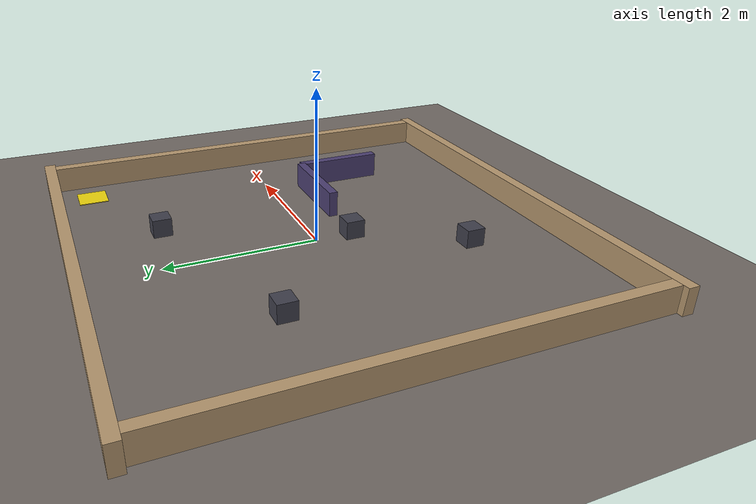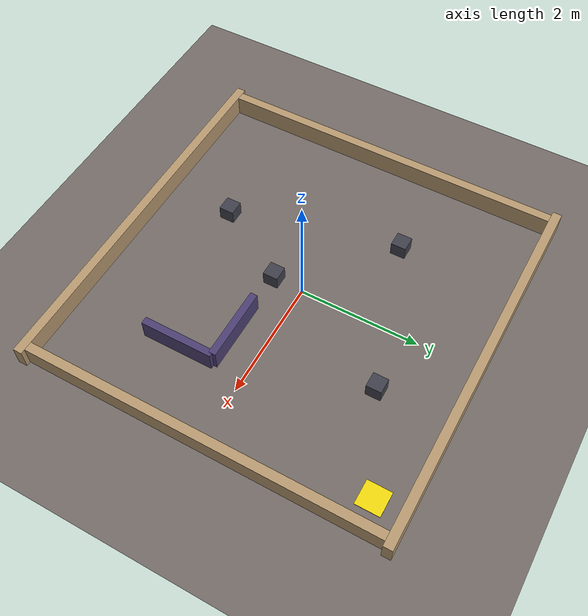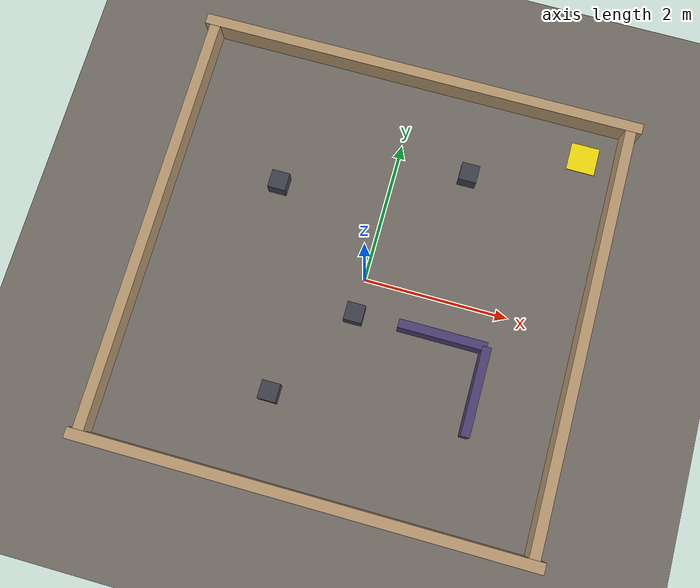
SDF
<?xml version="1.0" ?>
<sdf version="1.8">
  <world name="static_obstacles">
    <physics name="1ms" type="ignored">
      <max_step_size>0.001</max_step_size>
      <real_time_factor>1.0</real_time_factor>
    </physics>
    <plugin filename="gz-sim-physics-system"           name="gz::sim::systems::Physics"/>
    <plugin filename="gz-sim-sensors-system"           name="gz::sim::systems::Sensors">
      <render_engine>ogre2</render_engine>
    </plugin>
    <plugin filename="gz-sim-user-commands-system"     name="gz::sim::systems::UserCommands"/>
    <plugin filename="gz-sim-scene-broadcaster-system" name="gz::sim::systems::SceneBroadcaster"/>
    <plugin filename="gz-sim-contact-system"           name="gz::sim::systems::Contact"/>
    <plugin filename="gz-sim-imu-system"               name="gz::sim::systems::Imu"/>

    <light type="directional" name="overhead">
      <cast_shadows>false</cast_shadows>
      <pose>0 0 10 0 0 0</pose>
      <diffuse>1.0 1.0 1.0 1</diffuse>
      <specular>0.05 0.05 0.05 1</specular>
      <direction>0 0 -1</direction>
    </light>

    <model name="ground_plane">
      <static>true</static>
      <link name="link">
        <collision name="col"><geometry><plane><normal>0 0 1</normal><size>20 20</size></plane></geometry></collision>
        <visual name="vis">
          <geometry><plane><normal>0 0 1</normal><size>20 20</size></plane></geometry>
          <material><ambient>0.45 0.42 0.40 1</ambient><diffuse>0.45 0.42 0.40 1</diffuse></material>
        </visual>
      </link>
    </model>

    <!-- 6x6 room walls with correct names and heights -->
    <model name="wall_south">
      <static>true</static><pose>0 -3 0.175 0 0 0</pose>
      <link name="link">
        <collision name="c"><geometry><box><size>6.30 0.15 0.35</size></box></geometry></collision>
        <visual name="v"><geometry><box><size>6.30 0.15 0.35</size></box></geometry>
          <material><ambient>0.72 0.60 0.44 1</ambient><diffuse>0.72 0.60 0.44 1</diffuse></material>
        </visual>
      </link>
    </model>
    <model name="wall_north">
      <static>true</static><pose>0 3 0.175 0 0 0</pose>
      <link name="link">
        <collision name="c"><geometry><box><size>6.30 0.15 0.35</size></box></geometry></collision>
        <visual name="v"><geometry><box><size>6.30 0.15 0.35</size></box></geometry>
          <material><ambient>0.72 0.60 0.44 1</ambient><diffuse>0.72 0.60 0.44 1</diffuse></material>
        </visual>
      </link>
    </model>
    <model name="wall_west">
      <static>true</static><pose>-3 0 0.175 0 0 0</pose>
      <link name="link">
        <collision name="c"><geometry><box><size>0.15 5.85 0.35</size></box></geometry></collision>
        <visual name="v"><geometry><box><size>0.15 5.85 0.35</size></box></geometry>
          <material><ambient>0.72 0.60 0.44 1</ambient><diffuse>0.72 0.60 0.44 1</diffuse></material>
        </visual>
      </link>
    </model>
    <model name="wall_east">
      <static>true</static><pose>3 0 0.175 0 0 0</pose>
      <link name="link">
        <collision name="c"><geometry><box><size>0.15 5.85 0.35</size></box></geometry></collision>
        <visual name="v"><geometry><box><size>0.15 5.85 0.35</size></box></geometry>
          <material><ambient>0.72 0.60 0.44 1</ambient><diffuse>0.72 0.60 0.44 1</diffuse></material>
        </visual>
      </link>
    </model>

    <!-- STATIC PILLARS  (scattered to force path planning) -->
    <!-- Pillar helper macro: box 0.25×0.25×0.12, dark grey -->
    <model name="pillar_0">
      <static>true</static><pose>-1.5  1.0 0.06 0 0 0</pose>
      <link name="link">
        <collision name="c"><geometry><box><size>0.25 0.25 0.35</size></box></geometry></collision>
        <visual name="v"><geometry><box><size>0.25 0.25 0.35</size></box></geometry>
          <material><ambient>0.25 0.25 0.30 1</ambient><diffuse>0.25 0.25 0.30 1</diffuse></material>
        </visual>
      </link>
    </model>
    <model name="pillar_1">
      <static>true</static><pose> 1.0  1.8 0.06 0 0 0</pose>
      <link name="link">
        <collision name="c"><geometry><box><size>0.25 0.25 0.35</size></box></geometry></collision>
        <visual name="v"><geometry><box><size>0.25 0.25 0.35</size></box></geometry>
          <material><ambient>0.25 0.25 0.30 1</ambient><diffuse>0.25 0.25 0.30 1</diffuse></material>
        </visual>
      </link>
    </model>
    <model name="pillar_2">
      <static>true</static><pose> 0.0 -0.5 0.06 0 0 0</pose>
      <link name="link">
        <collision name="c"><geometry><box><size>0.25 0.25 0.35</size></box></geometry></collision>
        <visual name="v"><geometry><box><size>0.25 0.25 0.35</size></box></geometry>
          <material><ambient>0.25 0.25 0.30 1</ambient><diffuse>0.25 0.25 0.30 1</diffuse></material>
        </visual>
      </link>
    </model>
    <model name="pillar_3">
      <static>true</static><pose>-0.8 -1.8 0.06 0 0 0</pose>
      <link name="link">
        <collision name="c"><geometry><box><size>0.25 0.25 0.35</size></box></geometry></collision>
        <visual name="v"><geometry><box><size>0.25 0.25 0.35</size></box></geometry>
          <material><ambient>0.25 0.25 0.30 1</ambient><diffuse>0.25 0.25 0.30 1</diffuse></material>
        </visual>
      </link>
    </model>
    <!-- L-wall obstacle creating a corridor -->
    <model name="l_wall_h">
      <static>true</static><pose>1.2 -0.5 0.175 0 0 0</pose>
      <link name="link">
        <collision name="c"><geometry><box><size>1.20 0.12 0.35</size></box></geometry></collision>
        <visual name="v"><geometry><box><size>1.20 0.12 0.35</size></box></geometry>
          <material><ambient>0.30 0.25 0.45 1</ambient><diffuse>0.30 0.25 0.45 1</diffuse></material>
        </visual>
      </link>
    </model>
    <model name="l_wall_v">
      <static>true</static><pose>1.8 -1.1 0.175 0 0 0</pose>
      <link name="link">
        <collision name="c"><geometry><box><size>0.12 1.2 0.35</size></box></geometry></collision>
        <visual name="v"><geometry><box><size>0.12 1.2 0.35</size></box></geometry>
          <material><ambient>0.30 0.25 0.45 1</ambient><diffuse>0.30 0.25 0.45 1</diffuse></material>
        </visual>
      </link>
    </model>

    <!-- GOAL marker (yellow pad) at (2.5, 2.5) -->
    <model name="goal_marker">
      <static>true</static><pose>2.5 2.5 0.005 0 0 0</pose>
      <link name="link">
        <visual name="v">
          <geometry><box><size>0.40 0.40 0.01</size></box></geometry>
          <material><ambient>0.95 0.85 0.05 1</ambient><diffuse>0.95 0.85 0.05 1</diffuse></material>
        </visual>
      </link>
    </model>

  </world>
</sdf>
